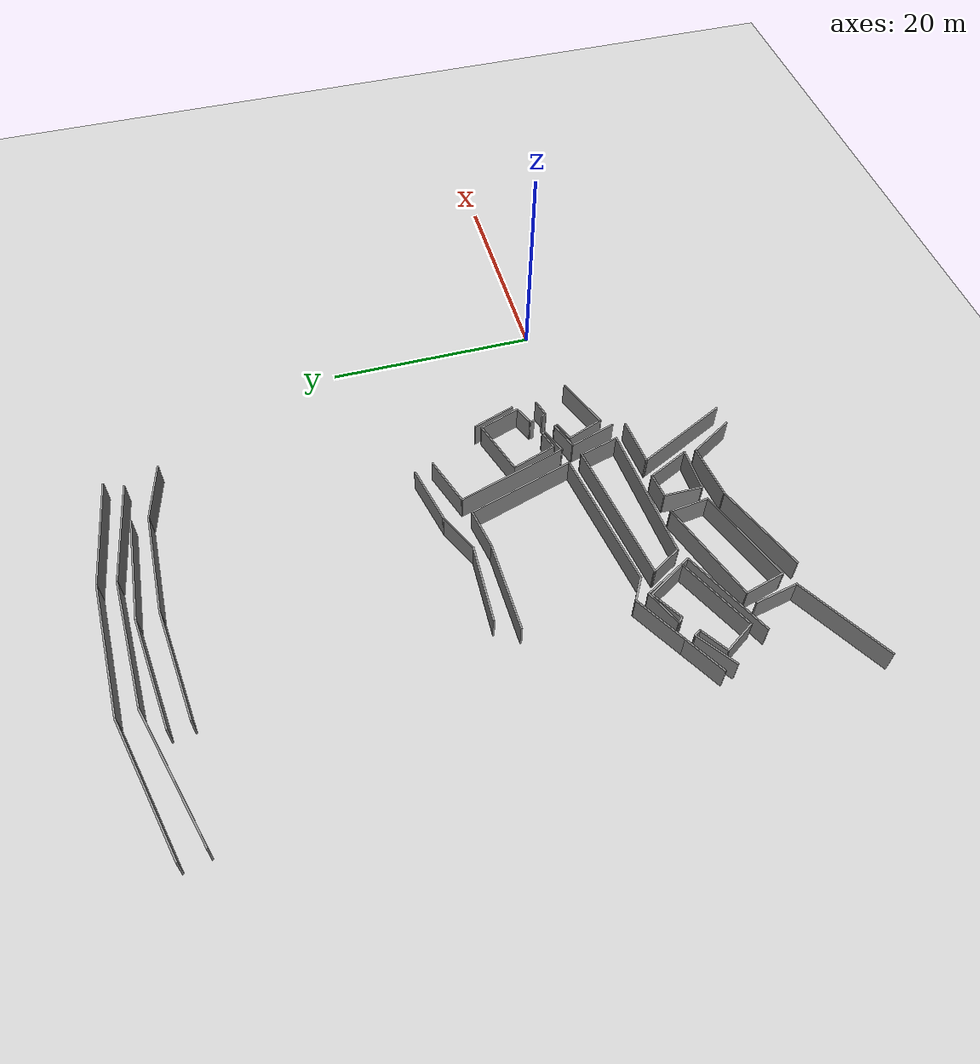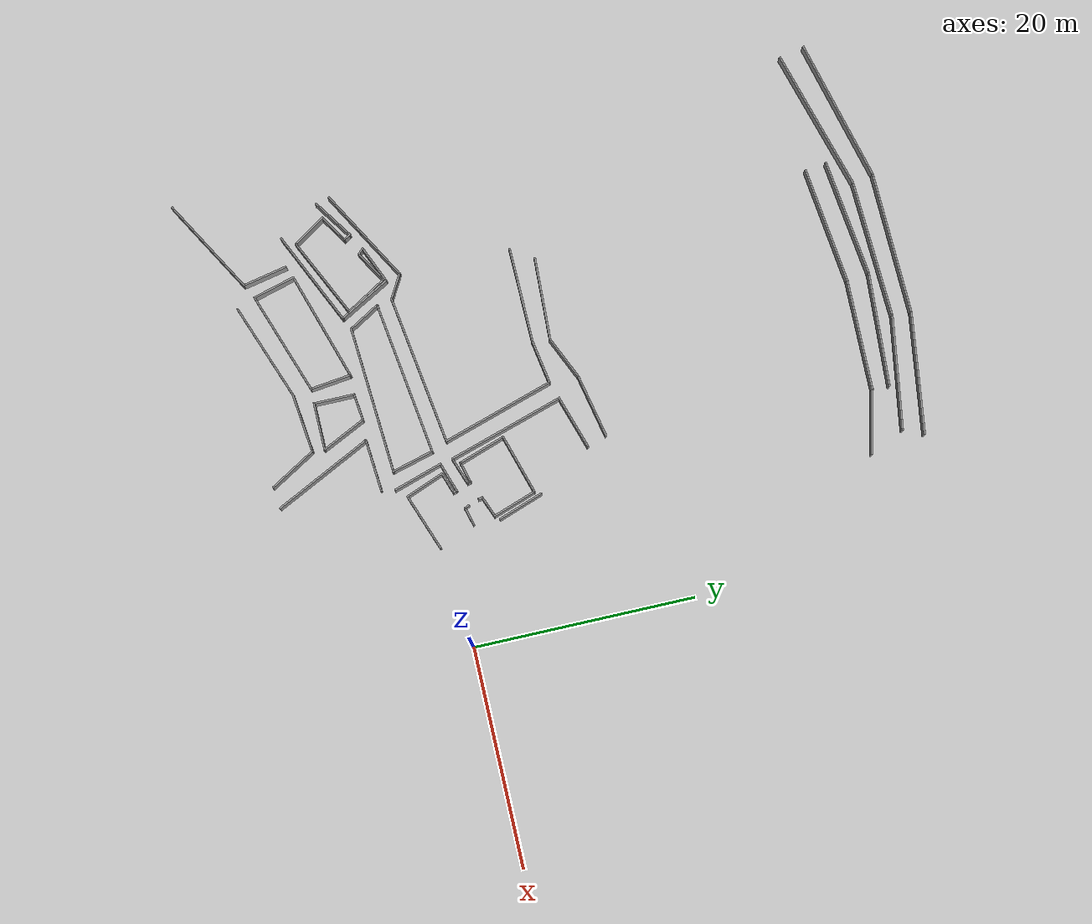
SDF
<sdf version="1.7">
 <world name="default">
  <model name="ground_plane">
   <static>1</static>
   <link name="link">
    <collision name="collision">
     <geometry><plane><normal>0 0 1</normal><size>100 100</size></plane></geometry>
     <surface><friction><ode><mu>100</mu><mu2>50</mu2></ode></friction></surface>
    </collision>
    <visual name="visual">
     <cast_shadows>0</cast_shadows>
     <geometry><plane><normal>0 0 1</normal><size>100 100</size></plane></geometry>
     <material>
      <script><uri>file://media/materials/scripts/gazebo.material</uri><name>Gazebo/Grey</name></script>
     </material>
    </visual>
   </link>
  </model>
  <model name="final_max_v1">
   <pose>-2.52311 0.689104 0 0 -0 0</pose>
   <link name="Wall_105">
    <collision name="Wall_105_Collision">
     <geometry><box><size>12.9786 0.15 2.5</size></box></geometry>
     <pose>0 0 1.25 0 -0 0</pose>
    </collision>
    <visual name="Wall_105_Visual">
     <pose>0 0 1.25 0 -0 0</pose>
     <geometry><box><size>12.9786 0.15 2.5</size></box></geometry>
     <material>
      <script><uri>file://media/materials/scripts/gazebo.material</uri><name>Gazebo/Grey</name></script>
      <ambient>1 1 1 1</ambient>
     </material>
     <meta><layer>0</layer></meta>
    </visual>
    <pose>-36.4883 41.0795 0 0 -0 0.269405</pose>
   </link>
   <link name="Wall_106">
    <collision name="Wall_106_Collision">
     <geometry><box><size>12.8269 0.15 2.5</size></box></geometry>
     <pose>0 0 1.25 0 -0 0</pose>
    </collision>
    <visual name="Wall_106_Visual">
     <pose>0 0 1.25 0 -0 0</pose>
     <geometry><box><size>12.8269 0.15 2.5</size></box></geometry>
     <material>
      <script><uri>file://media/materials/scripts/gazebo.material</uri><name>Gazebo/Grey</name></script>
      <ambient>1 1 1 1</ambient>
     </material>
     <meta><layer>0</layer></meta>
    </visual>
    <pose>-23.9732 43.0681 0 0 -0 0.044415</pose>
   </link>
   <link name="Wall_107">
    <collision name="Wall_107_Collision">
     <geometry><box><size>10.9191 0.15 2.5</size></box></geometry>
     <pose>0 0 1.25 0 -0 0</pose>
    </collision>
    <visual name="Wall_107_Visual">
     <pose>0 0 1.25 0 -0 0</pose>
     <geometry><box><size>10.9191 0.15 2.5</size></box></geometry>
     <material>
      <script><uri>file://media/materials/scripts/gazebo.material</uri><name>Gazebo/Grey</name></script>
      <ambient>1 1 1 1</ambient>
     </material>
     <meta><layer>0</layer></meta>
    </visual>
    <pose>-12.2939 42.7164 0 0 -0 -0.117872</pose>
   </link>
   <link name="Wall_153">
    <collision name="Wall_153_Collision">
     <geometry><box><size>12.9542 0.15 2.5</size></box></geometry>
     <pose>0 0 1.25 0 -0 0</pose>
    </collision>
    <visual name="Wall_153_Visual">
     <pose>0 0 1.25 0 -0 0</pose>
     <geometry><box><size>12.9542 0.15 2.5</size></box></geometry>
     <material>
      <script><uri>file://media/materials/scripts/gazebo.material</uri><name>Gazebo/Grey</name></script>
      <ambient>1 1 1 1</ambient>
     </material>
     <meta><layer>0</layer></meta>
    </visual>
    <pose>-36.0882 39.033 0 0 -0 0.299027</pose>
   </link>
   <link name="Wall_155">
    <collision name="Wall_155_Collision">
     <geometry><box><size>12.4081 0.15 2.5</size></box></geometry>
     <pose>0 0 1.25 0 -0 0</pose>
    </collision>
    <visual name="Wall_155_Visual">
     <pose>0 0 1.25 0 -0 0</pose>
     <geometry><box><size>12.4081 0.15 2.5</size></box></geometry>
     <material>
      <script><uri>file://media/materials/scripts/gazebo.material</uri><name>Gazebo/Grey</name></script>
      <ambient>1 1 1 1</ambient>
     </material>
     <meta><layer>0</layer></meta>
    </visual>
    <pose>-23.8522 41.287 0 0 -0 0.060078</pose>
   </link>
   <link name="Wall_157">
    <collision name="Wall_157_Collision">
     <geometry><box><size>10.2725 0.15 2.5</size></box></geometry>
     <pose>0 0 1.25 0 -0 0</pose>
    </collision>
    <visual name="Wall_157_Visual">
     <pose>0 0 1.25 0 -0 0</pose>
     <geometry><box><size>10.2725 0.15 2.5</size></box></geometry>
     <material>
      <script><uri>file://media/materials/scripts/gazebo.material</uri><name>Gazebo/Grey</name></script>
      <ambient>1 1 1 1</ambient>
     </material>
     <meta><layer>0</layer></meta>
    </visual>
    <pose>-12.7202 40.965 0 0 -0 -0.136756</pose>
   </link>
   <link name="Wall_187">
    <collision name="Wall_187_Collision">
     <geometry><box><size>10.5586 0.15 2.5</size></box></geometry>
     <pose>0 0 1.25 0 -0 0</pose>
    </collision>
    <visual name="Wall_187_Visual">
     <pose>0 0 1.25 0 -0 0</pose>
     <geometry><box><size>10.5586 0.15 2.5</size></box></geometry>
     <material>
      <script><uri>file://media/materials/scripts/gazebo.material</uri><name>Gazebo/Grey</name></script>
      <ambient>1 1 1 1</ambient>
     </material>
     <meta><layer>0</layer></meta>
    </visual>
    <pose>-27.0306 39.7397 0 0 -0 0.141897</pose>
   </link>
   <link name="Wall_189">
    <collision name="Wall_189_Collision">
     <geometry><box><size>10.2804 0.15 2.5</size></box></geometry>
     <pose>0 0 1.25 0 -0 0</pose>
    </collision>
    <visual name="Wall_189_Visual">
     <pose>0 0 1.25 0 -0 0</pose>
     <geometry><box><size>10.2804 0.15 2.5</size></box></geometry>
     <material>
      <script><uri>file://media/materials/scripts/gazebo.material</uri><name>Gazebo/Grey</name></script>
      <ambient>1 1 1 1</ambient>
     </material>
     <meta><layer>0</layer></meta>
    </visual>
    <pose>-16.8186 40.2457 0 0 -0 -0.045423</pose>
   </link>
   <link name="Wall_207">
    <collision name="Wall_207_Collision">
     <geometry><box><size>10.546 0.15 2.5</size></box></geometry>
     <pose>0 0 1.25 0 -0 0</pose>
    </collision>
    <visual name="Wall_207_Visual">
     <pose>0 0 1.25 0 -0 0</pose>
     <geometry><box><size>10.546 0.15 2.5</size></box></geometry>
     <material>
      <script><uri>file://media/materials/scripts/gazebo.material</uri><name>Gazebo/Grey</name></script>
      <ambient>1 1 1 1</ambient>
     </material>
     <meta><layer>0</layer></meta>
    </visual>
    <pose>-26.7651 37.7958 0 0 -0 0.133136</pose>
   </link>
   <link name="Wall_208">
    <collision name="Wall_208_Collision">
     <geometry><box><size>10 0.15 2.5</size></box></geometry>
     <pose>0 0 1.25 0 -0 0</pose>
    </collision>
    <visual name="Wall_208_Visual">
     <pose>0 0 1.25 0 -0 0</pose>
     <geometry><box><size>10 0.15 2.5</size></box></geometry>
     <material>
      <script><uri>file://media/materials/scripts/gazebo.material</uri><name>Gazebo/Grey</name></script>
      <ambient>1 1 1 1</ambient>
     </material>
     <meta><layer>0</layer></meta>
    </visual>
    <pose>-16.6881 38.4858 0 0 -0 0</pose>
   </link>
   <link name="Wall_326">
    <collision name="Wall_326_Collision">
     <geometry><box><size>2 0.15 2.5</size></box></geometry>
     <pose>0 0 1.25 0 -0 0</pose>
    </collision>
    <visual name="Wall_326_Visual">
     <pose>0 0 1.25 0 -0 0</pose>
     <geometry><box><size>2 0.15 2.5</size></box></geometry>
     <material>
      <script><uri>file://media/materials/scripts/gazebo.material</uri><name>Gazebo/Grey</name></script>
      <ambient>1 1 1 1</ambient>
     </material>
     <meta><layer>0</layer></meta>
    </visual>
    <pose>-12.5221 1.99009 0 0 -0 -2.87979</pose>
   </link>
   <link name="Wall_327">
    <collision name="Wall_327_Collision">
     <geometry><box><size>4.52817 0.15 2.5</size></box></geometry>
     <pose>0 0 1.25 0 -0 0</pose>
    </collision>
    <visual name="Wall_327_Visual">
     <pose>0 0 1.25 0 -0 0</pose>
     <geometry><box><size>4.52817 0.15 2.5</size></box></geometry>
     <material>
      <script><uri>file://media/materials/scripts/gazebo.material</uri><name>Gazebo/Grey</name></script>
      <ambient>1 1 1 1</ambient>
     </material>
     <meta><layer>0</layer></meta>
    </visual>
    <pose>-14.1161 3.82466 0 0 -0 1.89652</pose>
   </link>
   <link name="Wall_328">
    <collision name="Wall_328_Collision">
     <geometry><box><size>5.68673 0.15 2.5</size></box></geometry>
     <pose>0 0 1.25 0 -0 0</pose>
    </collision>
    <visual name="Wall_328_Visual">
     <pose>0 0 1.25 0 -0 0</pose>
     <geometry><box><size>5.68673 0.15 2.5</size></box></geometry>
     <material>
      <script><uri>file://media/materials/scripts/gazebo.material</uri><name>Gazebo/Grey</name></script>
      <ambient>1 1 1 1</ambient>
     </material>
     <meta><layer>0</layer></meta>
    </visual>
    <pose>-12.1699 6.71066 0 0 -0 0.2977</pose>
   </link>
   <link name="Wall_329">
    <collision name="Wall_329_Collision">
     <geometry><box><size>4.22069 0.15 2.5</size></box></geometry>
     <pose>0 0 1.25 0 -0 0</pose>
    </collision>
    <visual name="Wall_329_Visual">
     <pose>0 0 1.25 0 -0 0</pose>
     <geometry><box><size>4.22069 0.15 2.5</size></box></geometry>
     <material>
      <script><uri>file://media/materials/scripts/gazebo.material</uri><name>Gazebo/Grey</name></script>
      <ambient>1 1 1 1</ambient>
     </material>
     <meta><layer>0</layer></meta>
    </visual>
    <pose>-8.8617 5.59789 0 0 -0 -1.2397</pose>
   </link>
   <link name="Wall_330">
    <collision name="Wall_330_Collision">
     <geometry><box><size>2.0935 0.15 2.5</size></box></geometry>
     <pose>0 0 1.25 0 -0 0</pose>
    </collision>
    <visual name="Wall_330_Visual">
     <pose>0 0 1.25 0 -0 0</pose>
     <geometry><box><size>2.0935 0.15 2.5</size></box></geometry>
     <material>
      <script><uri>file://media/materials/scripts/gazebo.material</uri><name>Gazebo/Grey</name></script>
      <ambient>1 1 1 1</ambient>
     </material>
     <meta><layer>0</layer></meta>
    </visual>
    <pose>-9.1023 3.3122 0 0 -0 -2.76109</pose>
   </link>
   <link name="Wall_333">
    <collision name="Wall_333_Collision">
     <geometry><box><size>4.35405 0.15 2.5</size></box></geometry>
     <pose>0 0 1.25 0 -0 0</pose>
    </collision>
    <visual name="Wall_333_Visual">
     <pose>0 0 1.25 0 -0 0</pose>
     <geometry><box><size>4.35405 0.15 2.5</size></box></geometry>
     <material>
      <script><uri>file://media/materials/scripts/gazebo.material</uri><name>Gazebo/Grey</name></script>
      <ambient>1 1 1 1</ambient>
     </material>
     <meta><layer>0</layer></meta>
    </visual>
    <pose>-8.53088 6.07909 0 0 -0 1.90612</pose>
   </link>
   <link name="Wall_338">
    <collision name="Wall_338_Collision">
     <geometry><box><size>3.79257 0.15 2.5</size></box></geometry>
     <pose>0 0 1.25 0 -0 0</pose>
    </collision>
    <visual name="Wall_338_Visual">
     <pose>0 0 1.25 0 -0 0</pose>
     <geometry><box><size>3.79257 0.15 2.5</size></box></geometry>
     <material>
      <script><uri>file://media/materials/scripts/gazebo.material</uri><name>Gazebo/Grey</name></script>
      <ambient>1 1 1 1</ambient>
     </material>
     <meta><layer>0</layer></meta>
    </visual>
    <pose>-12.1998 -1.73062 0 0 -0 -1.20362</pose>
   </link>
   <link name="Wall_339">
    <collision name="Wall_339_Collision">
     <geometry><box><size>5.49451 0.15 2.5</size></box></geometry>
     <pose>0 0 1.25 0 -0 0</pose>
    </collision>
    <visual name="Wall_339_Visual">
     <pose>0 0 1.25 0 -0 0</pose>
     <geometry><box><size>5.49451 0.15 2.5</size></box></geometry>
     <material>
      <script><uri>file://media/materials/scripts/gazebo.material</uri><name>Gazebo/Grey</name></script>
      <ambient>1 1 1 1</ambient>
     </material>
     <meta><layer>0</layer></meta>
    </visual>
    <pose>-9.03535 -2.51518 0 0 -0 0.349607</pose>
   </link>
   <link name="Wall_348">
    <collision name="Wall_348_Collision">
     <geometry><box><size>2.08526 0.15 2.5</size></box></geometry>
     <pose>0 0 1.25 0 -0 0</pose>
    </collision>
    <visual name="Wall_348_Visual">
     <pose>0 0 1.25 0 -0 0</pose>
     <geometry><box><size>2.08526 0.15 2.5</size></box></geometry>
     <material>
      <script><uri>file://media/materials/scripts/gazebo.material</uri><name>Gazebo/Grey</name></script>
      <ambient>1 1 1 1</ambient>
     </material>
     <meta><layer>0</layer></meta>
    </visual>
    <pose>-11.9382 0.283094 0 0 -0 0.330297</pose>
   </link>
   <link name="Wall_350">
    <collision name="Wall_350_Collision">
     <geometry><box><size>1.75 0.15 2.5</size></box></geometry>
     <pose>0 0 1.25 0 -0 0</pose>
    </collision>
    <visual name="Wall_350_Visual">
     <pose>0 0 1.25 0 -0 0</pose>
     <geometry><box><size>1.75 0.15 2.5</size></box></geometry>
     <material>
      <script><uri>file://media/materials/scripts/gazebo.material</uri><name>Gazebo/Grey</name></script>
      <ambient>1 1 1 1</ambient>
     </material>
     <meta><layer>0</layer></meta>
    </visual>
    <pose>-8.6574 1.48825 0 0 -0 -2.87979</pose>
   </link>
   <link name="Wall_356">
    <collision name="Wall_356_Collision">
     <geometry><box><size>0.444601 0.15 2.5</size></box></geometry>
     <pose>0 0 1.25 0 -0 0</pose>
    </collision>
    <visual name="Wall_356_Visual">
     <pose>0 0 1.25 0 -0 0</pose>
     <geometry><box><size>0.444601 0.15 2.5</size></box></geometry>
     <material>
      <script><uri>file://media/materials/scripts/gazebo.material</uri><name>Gazebo/Grey</name></script>
      <ambient>1 1 1 1</ambient>
     </material>
     <meta><layer>0</layer></meta>
    </visual>
    <pose>-11.0589 0.739759 0 0 -0 -1.32406</pose>
   </link>
   <link name="Wall_358">
    <collision name="Wall_358_Collision">
     <geometry><box><size>0.523214 0.15 2.5</size></box></geometry>
     <pose>0 0 1.25 0 -0 0</pose>
    </collision>
    <visual name="Wall_358_Visual">
     <pose>0 0 1.25 0 -0 0</pose>
     <geometry><box><size>0.523214 0.15 2.5</size></box></geometry>
     <material>
      <script><uri>file://media/materials/scripts/gazebo.material</uri><name>Gazebo/Grey</name></script>
      <ambient>1 1 1 1</ambient>
     </material>
     <meta><layer>0</layer></meta>
    </visual>
    <pose>-9.5231 1.443 0 0 -0 -1.04932</pose>
   </link>
   <link name="Wall_360">
    <collision name="Wall_360_Collision">
     <geometry><box><size>0.411181 0.15 2.5</size></box></geometry>
     <pose>0 0 1.25 0 -0 0</pose>
    </collision>
    <visual name="Wall_360_Visual">
     <pose>0 0 1.25 0 -0 0</pose>
     <geometry><box><size>0.411181 0.15 2.5</size></box></geometry>
     <material>
      <script><uri>file://media/materials/scripts/gazebo.material</uri><name>Gazebo/Grey</name></script>
      <ambient>1 1 1 1</ambient>
     </material>
     <meta><layer>0</layer></meta>
    </visual>
    <pose>-11.5853 2.1063 0 0 -0 1.90897</pose>
   </link>
   <link name="Wall_362">
    <collision name="Wall_362_Collision">
     <geometry><box><size>0.467902 0.15 2.5</size></box></geometry>
     <pose>0 0 1.25 0 -0 0</pose>
    </collision>
    <visual name="Wall_362_Visual">
     <pose>0 0 1.25 0 -0 0</pose>
     <geometry><box><size>0.467902 0.15 2.5</size></box></geometry>
     <material>
      <script><uri>file://media/materials/scripts/gazebo.material</uri><name>Gazebo/Grey</name></script>
      <ambient>1 1 1 1</ambient>
     </material>
     <meta><layer>0</layer></meta>
    </visual>
    <pose>-9.98226 2.79392 0 0 -0 1.71151</pose>
   </link>
   <link name="Wall_385">
    <collision name="Wall_385_Collision">
     <geometry><box><size>5.83984 0.15 2.5</size></box></geometry>
     <pose>0 0 1.25 0 -0 0</pose>
    </collision>
    <visual name="Wall_385_Visual">
     <pose>0 0 1.25 0 -0 0</pose>
     <geometry><box><size>5.83984 0.15 2.5</size></box></geometry>
     <material>
      <script><uri>file://media/materials/scripts/gazebo.material</uri><name>Gazebo/Grey</name></script>
      <ambient>1 1 1 1</ambient>
     </material>
     <meta><layer>0</layer></meta>
    </visual>
    <pose>-8.99774 37.818 0 0 -0 -0.236973</pose>
   </link>
   <link name="Wall_394">
    <collision name="Wall_394_Collision">
     <geometry><box><size>7.47359 0.15 2.5</size></box></geometry>
     <pose>0 0 1.25 0 -0 0</pose>
    </collision>
    <visual name="Wall_394_Visual">
     <pose>0 0 1.25 0 -0 0</pose>
     <geometry><box><size>7.47359 0.15 2.5</size></box></geometry>
     <material>
      <script><uri>file://media/materials/scripts/gazebo.material</uri><name>Gazebo/Grey</name></script>
      <ambient>1 1 1 1</ambient>
     </material>
     <meta><layer>0</layer></meta>
    </visual>
    <pose>-25.9366 11.9607 0 0 -0 -0.037482</pose>
   </link>
   <link name="Wall_398">
    <collision name="Wall_398_Collision">
     <geometry><box><size>8.58721 0.15 2.5</size></box></geometry>
     <pose>0 0 1.25 0 -0 0</pose>
    </collision>
    <visual name="Wall_398_Visual">
     <pose>0 0 1.25 0 -0 0</pose>
     <geometry><box><size>8.58721 0.15 2.5</size></box></geometry>
     <material>
      <script><uri>file://media/materials/scripts/gazebo.material</uri><name>Gazebo/Grey</name></script>
      <ambient>1 1 1 1</ambient>
     </material>
     <meta><layer>0</layer></meta>
    </visual>
    <pose>-26.6782 10.1895 0 0 -0 0.01868</pose>
   </link>
   <link name="Wall_400">
    <collision name="Wall_400_Collision">
     <geometry><box><size>4.23042 0.15 2.5</size></box></geometry>
     <pose>0 0 1.25 0 -0 0</pose>
    </collision>
    <visual name="Wall_400_Visual">
     <pose>0 0 1.25 0 -0 0</pose>
     <geometry><box><size>4.23042 0.15 2.5</size></box></geometry>
     <material>
      <script><uri>file://media/materials/scripts/gazebo.material</uri><name>Gazebo/Grey</name></script>
      <ambient>1 1 1 1</ambient>
     </material>
     <meta><layer>0</layer></meta>
    </visual>
    <pose>-20.4212 12.6703 0 0 -0 0.428018</pose>
   </link>
   <link name="Wall_401">
    <collision name="Wall_401_Collision">
     <geometry><box><size>5.84537 0.15 2.5</size></box></geometry>
     <pose>0 0 1.25 0 -0 0</pose>
    </collision>
    <visual name="Wall_401_Visual">
     <pose>0 0 1.25 0 -0 0</pose>
     <geometry><box><size>5.84537 0.15 2.5</size></box></geometry>
     <material>
      <script><uri>file://media/materials/scripts/gazebo.material</uri><name>Gazebo/Grey</name></script>
      <ambient>1 1 1 1</ambient>
     </material>
     <meta><layer>0</layer></meta>
    </visual>
    <pose>-15.7834 14.1273 0 0 -0 0.215921</pose>
   </link>
   <link name="Wall_404">
    <collision name="Wall_404_Collision">
     <geometry><box><size>4 0.15 2.5</size></box></geometry>
     <pose>0 0 1.25 0 -0 0</pose>
    </collision>
    <visual name="Wall_404_Visual">
     <pose>0 0 1.25 0 -0 0</pose>
     <geometry><box><size>4 0.15 2.5</size></box></geometry>
     <material>
      <script><uri>file://media/materials/scripts/gazebo.material</uri><name>Gazebo/Grey</name></script>
      <ambient>1 1 1 1</ambient>
     </material>
     <meta><layer>0</layer></meta>
    </visual>
    <pose>-14.4631 -2.31451 0 0 -0 1.8326</pose>
   </link>
   <link name="Wall_406">
    <collision name="Wall_406_Collision">
     <geometry><box><size>3.25 0.15 2.5</size></box></geometry>
     <pose>0 0 1.25 0 -0 0</pose>
    </collision>
    <visual name="Wall_406_Visual">
     <pose>0 0 1.25 0 -0 0</pose>
     <geometry><box><size>3.25 0.15 2.5</size></box></geometry>
     <material>
      <script><uri>file://media/materials/scripts/gazebo.material</uri><name>Gazebo/Grey</name></script>
      <ambient>1 1 1 1</ambient>
     </material>
     <meta><layer>0</layer></meta>
    </visual>
    <pose>-27.828 -3.70736 0 0 -0 -1.0472</pose>
   </link>
   <link name="Wall_407">
    <collision name="Wall_407_Collision">
     <geometry><box><size>13.2674 0.15 2.5</size></box></geometry>
     <pose>0 0 1.25 0 -0 0</pose>
    </collision>
    <visual name="Wall_407_Visual">
     <pose>0 0 1.25 0 -0 0</pose>
     <geometry><box><size>13.2674 0.15 2.5</size></box></geometry>
     <material>
      <script><uri>file://media/materials/scripts/gazebo.material</uri><name>Gazebo/Grey</name></script>
      <ambient>1 1 1 1</ambient>
     </material>
     <meta><layer>0</layer></meta>
    </visual>
    <pose>-20.5089 -4.61181 0 0 -0 0.066815</pose>
   </link>
   <link name="Wall_409">
    <collision name="Wall_409_Collision">
     <geometry><box><size>13.9247 0.15 2.5</size></box></geometry>
     <pose>0 0 1.25 0 -0 0</pose>
    </collision>
    <visual name="Wall_409_Visual">
     <pose>0 0 1.25 0 -0 0</pose>
     <geometry><box><size>13.9247 0.15 2.5</size></box></geometry>
     <material>
      <script><uri>file://media/materials/scripts/gazebo.material</uri><name>Gazebo/Grey</name></script>
      <ambient>1 1 1 1</ambient>
     </material>
     <meta><layer>0</layer></meta>
    </visual>
    <pose>-21.7821 -1.41006 0 0 -0 0.139103</pose>
   </link>
   <link name="Wall_411">
    <collision name="Wall_411_Collision">
     <geometry><box><size>3.44351 0.15 2.5</size></box></geometry>
     <pose>0 0 1.25 0 -0 0</pose>
    </collision>
    <visual name="Wall_411_Visual">
     <pose>0 0 1.25 0 -0 0</pose>
     <geometry><box><size>3.44351 0.15 2.5</size></box></geometry>
     <material>
      <script><uri>file://media/materials/scripts/gazebo.material</uri><name>Gazebo/Grey</name></script>
      <ambient>1 1 1 1</ambient>
     </material>
     <meta><layer>0</layer></meta>
    </visual>
    <pose>-36.3458 -6.77948 0 0 -0 -1.00041</pose>
   </link>
   <link name="Wall_412">
    <collision name="Wall_412_Collision">
     <geometry><box><size>7.75303 0.15 2.5</size></box></geometry>
     <pose>0 0 1.25 0 -0 0</pose>
    </collision>
    <visual name="Wall_412_Visual">
     <pose>0 0 1.25 0 -0 0</pose>
     <geometry><box><size>7.75303 0.15 2.5</size></box></geometry>
     <material>
      <script><uri>file://media/materials/scripts/gazebo.material</uri><name>Gazebo/Grey</name></script>
      <ambient>1 1 1 1</ambient>
     </material>
     <meta><layer>0</layer></meta>
    </visual>
    <pose>-32.0307 -6.51795 0 0 -0 0.448264</pose>
   </link>
   <link name="Wall_413">
    <collision name="Wall_413_Collision">
     <geometry><box><size>4.27641 0.15 2.5</size></box></geometry>
     <pose>0 0 1.25 0 -0 0</pose>
    </collision>
    <visual name="Wall_413_Visual">
     <pose>0 0 1.25 0 -0 0</pose>
     <geometry><box><size>4.27641 0.15 2.5</size></box></geometry>
     <material>
      <script><uri>file://media/materials/scripts/gazebo.material</uri><name>Gazebo/Grey</name></script>
      <ambient>1 1 1 1</ambient>
     </material>
     <meta><layer>0</layer></meta>
    </visual>
    <pose>-29.6509 -3.09202 0 0 -0 2.10252</pose>
   </link>
   <link name="Wall_414">
    <collision name="Wall_414_Collision">
     <geometry><box><size>3.27165 0.15 2.5</size></box></geometry>
     <pose>0 0 1.25 0 -0 0</pose>
    </collision>
    <visual name="Wall_414_Visual">
     <pose>0 0 1.25 0 -0 0</pose>
     <geometry><box><size>3.27165 0.15 2.5</size></box></geometry>
     <material>
      <script><uri>file://media/materials/scripts/gazebo.material</uri><name>Gazebo/Grey</name></script>
      <ambient>1 1 1 1</ambient>
     </material>
     <meta><layer>0</layer></meta>
    </visual>
    <pose>-32.0307 -2.12439 0 0 -0 -2.59543</pose>
   </link>
   <link name="Wall_417">
    <collision name="Wall_417_Collision">
     <geometry><box><size>2.91163 0.15 2.5</size></box></geometry>
     <pose>0 0 1.25 0 -0 0</pose>
    </collision>
    <visual name="Wall_417_Visual">
     <pose>0 0 1.25 0 -0 0</pose>
     <geometry><box><size>2.91163 0.15 2.5</size></box></geometry>
     <material>
      <script><uri>file://media/materials/scripts/gazebo.material</uri><name>Gazebo/Grey</name></script>
      <ambient>1 1 1 1</ambient>
     </material>
     <meta><layer>0</layer></meta>
    </visual>
    <pose>-36.0749 -4.64456 0 0 -0 -2.56839</pose>
   </link>
   <link name="Wall_422">
    <collision name="Wall_422_Collision">
     <geometry><box><size>0.785118 0.15 2.5</size></box></geometry>
     <pose>0 0 1.25 0 -0 0</pose>
    </collision>
    <visual name="Wall_422_Visual">
     <pose>0 0 1.25 0 -0 0</pose>
     <geometry><box><size>0.785118 0.15 2.5</size></box></geometry>
     <material>
      <script><uri>file://media/materials/scripts/gazebo.material</uri><name>Gazebo/Grey</name></script>
      <ambient>1 1 1 1</ambient>
     </material>
     <meta><layer>0</layer></meta>
    </visual>
    <pose>-35.0775 -3.62304 0 0 -0 -1.03267</pose>
   </link>
   <link name="Wall_424">
    <collision name="Wall_424_Collision">
     <geometry><box><size>0.742584 0.15 2.5</size></box></geometry>
     <pose>0 0 1.25 0 -0 0</pose>
    </collision>
    <visual name="Wall_424_Visual">
     <pose>0 0 1.25 0 -0 0</pose>
     <geometry><box><size>0.742584 0.15 2.5</size></box></geometry>
     <material>
      <script><uri>file://media/materials/scripts/gazebo.material</uri><name>Gazebo/Grey</name></script>
      <ambient>1 1 1 1</ambient>
     </material>
     <meta><layer>0</layer></meta>
    </visual>
    <pose>-33.5761 -2.7277 0 0 -0 -0.775427</pose>
   </link>
   <link name="Wall_426">
    <collision name="Wall_426_Collision">
     <geometry><box><size>4.25 0.15 2.5</size></box></geometry>
     <pose>0 0 1.25 0 -0 0</pose>
    </collision>
    <visual name="Wall_426_Visual">
     <pose>0 0 1.25 0 -0 0</pose>
     <geometry><box><size>4.25 0.15 2.5</size></box></geometry>
     <material>
      <script><uri>file://media/materials/scripts/gazebo.material</uri><name>Gazebo/Grey</name></script>
      <ambient>1 1 1 1</ambient>
     </material>
     <meta><layer>0</layer></meta>
    </visual>
    <pose>-37.0776 -3.40328 0 0 -0 -2.61799</pose>
   </link>
   <link name="Wall_431">
    <collision name="Wall_431_Collision">
     <geometry><box><size>5.25 0.15 2.5</size></box></geometry>
     <pose>0 0 1.25 0 -0 0</pose>
    </collision>
    <visual name="Wall_431_Visual">
     <pose>0 0 1.25 0 -0 0</pose>
     <geometry><box><size>5.25 0.15 2.5</size></box></geometry>
     <material>
      <script><uri>file://media/materials/scripts/gazebo.material</uri><name>Gazebo/Grey</name></script>
      <ambient>1 1 1 1</ambient>
     </material>
     <meta><layer>0</layer></meta>
    </visual>
    <pose>-33.0939 -1.10328 0 0 -0 0.523599</pose>
   </link>
   <link name="Wall_432">
    <collision name="Wall_432_Collision">
     <geometry><box><size>2.5 0.15 2.5</size></box></geometry>
     <pose>0 0 1.25 0 -0 0</pose>
    </collision>
    <visual name="Wall_432_Visual">
     <pose>0 0 1.25 0 -0 0</pose>
     <geometry><box><size>2.5 0.15 2.5</size></box></geometry>
     <material>
      <script><uri>file://media/materials/scripts/gazebo.material</uri><name>Gazebo/Grey</name></script>
      <ambient>1 1 1 1</ambient>
     </material>
     <meta><layer>0</layer></meta>
    </visual>
    <pose>-29.8679 -0.415777 0 0 -0 -0.523599</pose>
   </link>
   <link name="Wall_433">
    <collision name="Wall_433_Collision">
     <geometry><box><size>13.5881 0.15 2.5</size></box></geometry>
     <pose>0 0 1.25 0 -0 0</pose>
    </collision>
    <visual name="Wall_433_Visual">
     <pose>0 0 1.25 0 -0 0</pose>
     <geometry><box><size>13.5881 0.15 2.5</size></box></geometry>
     <material>
      <script><uri>file://media/materials/scripts/gazebo.material</uri><name>Gazebo/Grey</name></script>
      <ambient>1 1 1 1</ambient>
     </material>
     <meta><layer>0</layer></meta>
    </visual>
    <pose>-22.2034 -0.021479 0 0 -0 0.146646</pose>
   </link>
   <link name="Wall_435">
    <collision name="Wall_435_Collision">
     <geometry><box><size>10.5808 0.15 2.5</size></box></geometry>
     <pose>0 0 1.25 0 -0 0</pose>
    </collision>
    <visual name="Wall_435_Visual">
     <pose>0 0 1.25 0 -0 0</pose>
     <geometry><box><size>10.5808 0.15 2.5</size></box></geometry>
     <material>
      <script><uri>file://media/materials/scripts/gazebo.material</uri><name>Gazebo/Grey</name></script>
      <ambient>1 1 1 1</ambient>
     </material>
     <meta><layer>0</layer></meta>
    </visual>
    <pose>-17.088 5.94576 0 0 -0 -1.27273</pose>
   </link>
   <link name="Wall_437">
    <collision name="Wall_437_Collision">
     <geometry><box><size>4.04743 0.15 2.5</size></box></geometry>
     <pose>0 0 1.25 0 -0 0</pose>
    </collision>
    <visual name="Wall_437_Visual">
     <pose>0 0 1.25 0 -0 0</pose>
     <geometry><box><size>4.04743 0.15 2.5</size></box></geometry>
     <material>
      <script><uri>file://media/materials/scripts/gazebo.material</uri><name>Gazebo/Grey</name></script>
      <ambient>1 1 1 1</ambient>
     </material>
     <meta><layer>0</layer></meta>
    </visual>
    <pose>-20.54 10.5998 0 0 -0 0.170915</pose>
   </link>
   <link name="Wall_439">
    <collision name="Wall_439_Collision">
     <geometry><box><size>10.9365 0.15 2.5</size></box></geometry>
     <pose>0 0 1.25 0 -0 0</pose>
    </collision>
    <visual name="Wall_439_Visual">
     <pose>0 0 1.25 0 -0 0</pose>
     <geometry><box><size>10.9365 0.15 2.5</size></box></geometry>
     <material>
      <script><uri>file://media/materials/scripts/gazebo.material</uri><name>Gazebo/Grey</name></script>
      <ambient>1 1 1 1</ambient>
     </material>
     <meta><layer>0</layer></meta>
    </visual>
    <pose>-15.4987 6.28843 0 0 -0 1.86683</pose>
   </link>
   <link name="Wall_440">
    <collision name="Wall_440_Collision">
     <geometry><box><size>5.05496 0.15 2.5</size></box></geometry>
     <pose>0 0 1.25 0 -0 0</pose>
    </collision>
    <visual name="Wall_440_Visual">
     <pose>0 0 1.25 0 -0 0</pose>
     <geometry><box><size>5.05496 0.15 2.5</size></box></geometry>
     <material>
      <script><uri>file://media/materials/scripts/gazebo.material</uri><name>Gazebo/Grey</name></script>
      <ambient>1 1 1 1</ambient>
     </material>
     <meta><layer>0</layer></meta>
    </visual>
    <pose>-14.7399 12.2058 0 0 -0 0.314541</pose>
   </link>
   <link name="Wall_442">
    <collision name="Wall_442_Collision">
     <geometry><box><size>2.6815 0.15 2.5</size></box></geometry>
     <pose>0 0 1.25 0 -0 0</pose>
    </collision>
    <visual name="Wall_442_Visual">
     <pose>0 0 1.25 0 -0 0</pose>
     <geometry><box><size>2.6815 0.15 2.5</size></box></geometry>
     <material>
      <script><uri>file://media/materials/scripts/gazebo.material</uri><name>Gazebo/Grey</name></script>
      <ambient>1 1 1 1</ambient>
     </material>
     <meta><layer>0</layer></meta>
    </visual>
    <pose>-12.7336 1.55645 0 0 -0 0.34381</pose>
   </link>
   <link name="Wall_444">
    <collision name="Wall_444_Collision">
     <geometry><box><size>4.68733 0.15 2.5</size></box></geometry>
     <pose>0 0 1.25 0 -0 0</pose>
    </collision>
    <visual name="Wall_444_Visual">
     <pose>0 0 1.25 0 -0 0</pose>
     <geometry><box><size>4.68733 0.15 2.5</size></box></geometry>
     <material>
      <script><uri>file://media/materials/scripts/gazebo.material</uri><name>Gazebo/Grey</name></script>
      <ambient>1 1 1 1</ambient>
     </material>
     <meta><layer>0</layer></meta>
    </visual>
    <pose>-13.0325 -2.16165 0 0 -0 -1.26791</pose>
   </link>
   <link name="Wall_446">
    <collision name="Wall_446_Collision">
     <geometry><box><size>2.90807 0.15 2.5</size></box></geometry>
     <pose>0 0 1.25 0 -0 0</pose>
    </collision>
    <visual name="Wall_446_Visual">
     <pose>0 0 1.25 0 -0 0</pose>
     <geometry><box><size>2.90807 0.15 2.5</size></box></geometry>
     <material>
      <script><uri>file://media/materials/scripts/gazebo.material</uri><name>Gazebo/Grey</name></script>
      <ambient>1 1 1 1</ambient>
     </material>
     <meta><layer>0</layer></meta>
    </visual>
    <pose>-12.402 0.443172 0 0 -0 0.324301</pose>
   </link>
   <link name="Wall_457">
    <collision name="Wall_457_Collision">
     <geometry><box><size>3.68227 0.15 2.5</size></box></geometry>
     <pose>0 0 1.25 0 -0 0</pose>
    </collision>
    <visual name="Wall_457_Visual">
     <pose>0 0 1.25 0 -0 0</pose>
     <geometry><box><size>3.68227 0.15 2.5</size></box></geometry>
     <material>
      <script><uri>file://media/materials/scripts/gazebo.material</uri><name>Gazebo/Grey</name></script>
      <ambient>1 1 1 1</ambient>
     </material>
     <meta><layer>0</layer></meta>
    </visual>
    <pose>-32.1675 -1.81723 0 0 -0 0.409418</pose>
   </link>
   <link name="Wall_458">
    <collision name="Wall_458_Collision">
     <geometry><box><size>5.20672 0.15 2.5</size></box></geometry>
     <pose>0 0 1.25 0 -0 0</pose>
    </collision>
    <visual name="Wall_458_Visual">
     <pose>0 0 1.25 0 -0 0</pose>
     <geometry><box><size>5.20672 0.15 2.5</size></box></geometry>
     <material>
      <script><uri>file://media/materials/scripts/gazebo.material</uri><name>Gazebo/Grey</name></script>
      <ambient>1 1 1 1</ambient>
     </material>
     <meta><layer>0</layer></meta>
    </visual>
    <pose>-29.3406 -3.33597 0 0 -0 -1.07323</pose>
   </link>
   <link name="Wall_463">
    <collision name="Wall_463_Collision">
     <geometry><box><size>9.07121 0.15 2.5</size></box></geometry>
     <pose>0 0 1.25 0 -0 0</pose>
    </collision>
    <visual name="Wall_463_Visual">
     <pose>0 0 1.25 0 -0 0</pose>
     <geometry><box><size>9.07121 0.15 2.5</size></box></geometry>
     <material>
      <script><uri>file://media/materials/scripts/gazebo.material</uri><name>Gazebo/Grey</name></script>
      <ambient>1 1 1 1</ambient>
     </material>
     <meta><layer>0</layer></meta>
    </visual>
    <pose>-32.1789 -7.43774 0 0 -0 0.435058</pose>
   </link>
   <link name="Wall_467">
    <collision name="Wall_467_Collision">
     <geometry><box><size>4.16609 0.15 2.5</size></box></geometry>
     <pose>0 0 1.25 0 -0 0</pose>
    </collision>
    <visual name="Wall_467_Visual">
     <pose>0 0 1.25 0 -0 0</pose>
     <geometry><box><size>4.16609 0.15 2.5</size></box></geometry>
     <material>
      <script><uri>file://media/materials/scripts/gazebo.material</uri><name>Gazebo/Grey</name></script>
      <ambient>1 1 1 1</ambient>
     </material>
     <meta><layer>0</layer></meta>
    </visual>
    <pose>-36.889 -4.49661 0 0 -0 0.607515</pose>
   </link>
   <link name="Wall_561">
    <collision name="Wall_561_Collision">
     <geometry><box><size>9.11129 0.15 2.5</size></box></geometry>
     <pose>0 0 1.25 0 -0 0</pose>
    </collision>
    <visual name="Wall_561_Visual">
     <pose>0 0 1.25 0 -0 0</pose>
     <geometry><box><size>9.11129 0.15 2.5</size></box></geometry>
     <material>
      <script><uri>file://media/materials/scripts/gazebo.material</uri><name>Gazebo/Grey</name></script>
      <ambient>1 1 1 1</ambient>
     </material>
     <meta><layer>0</layer></meta>
    </visual>
    <pose>-26.7301 -12.8612 0 0 -0 0.352405</pose>
   </link>
   <link name="Wall_576">
    <collision name="Wall_576_Collision">
     <geometry><box><size>5.446 0.15 2.5</size></box></geometry>
     <pose>0 0 1.25 0 -0 0</pose>
    </collision>
    <visual name="Wall_576_Visual">
     <pose>0 0 1.25 0 -0 0</pose>
     <geometry><box><size>5.446 0.15 2.5</size></box></geometry>
     <material>
      <script><uri>file://media/materials/scripts/gazebo.material</uri><name>Gazebo/Grey</name></script>
      <ambient>1 1 1 1</ambient>
     </material>
     <meta><layer>0</layer></meta>
    </visual>
    <pose>-19.8928 -11.024 0 0 -0 0.10998</pose>
   </link>
   <link name="Wall_578">
    <collision name="Wall_578_Collision">
     <geometry><box><size>4.78278 0.15 2.5</size></box></geometry>
     <pose>0 0 1.25 0 -0 0</pose>
    </collision>
    <visual name="Wall_578_Visual">
     <pose>0 0 1.25 0 -0 0</pose>
     <geometry><box><size>4.78278 0.15 2.5</size></box></geometry>
     <material>
      <script><uri>file://media/materials/scripts/gazebo.material</uri><name>Gazebo/Grey</name></script>
      <ambient>1 1 1 1</ambient>
     </material>
     <meta><layer>0</layer></meta>
    </visual>
    <pose>-16.0951 -12.735 0 0 -0 -1.0434</pose>
   </link>
   <link name="Wall_583">
    <collision name="Wall_583_Collision">
     <geometry><box><size>4.15341 0.15 2.5</size></box></geometry>
     <pose>0 0 1.25 0 -0 0</pose>
    </collision>
    <visual name="Wall_583_Visual">
     <pose>0 0 1.25 0 -0 0</pose>
     <geometry><box><size>4.15341 0.15 2.5</size></box></geometry>
     <material>
      <script><uri>file://media/materials/scripts/gazebo.material</uri><name>Gazebo/Grey</name></script>
      <ambient>1 1 1 1</ambient>
     </material>
     <meta><layer>0</layer></meta>
    </visual>
    <pose>-33.2902 -11.4567 0 0 -0 -1.3738</pose>
   </link>
   <link name="Wall_584">
    <collision name="Wall_584_Collision">
     <geometry><box><size>9.5 0.15 2.5</size></box></geometry>
     <pose>0 0 1.25 0 -0 0</pose>
    </collision>
    <visual name="Wall_584_Visual">
     <pose>0 0 1.25 0 -0 0</pose>
     <geometry><box><size>9.5 0.15 2.5</size></box></geometry>
     <material>
      <script><uri>file://media/materials/scripts/gazebo.material</uri><name>Gazebo/Grey</name></script>
      <ambient>1 1 1 1</ambient>
     </material>
     <meta><layer>0</layer></meta>
    </visual>
    <pose>-36.9471 -15.7572 0 0 -0 -2.61799</pose>
   </link>
   <link name="Wall_588">
    <collision name="Wall_588_Collision">
     <geometry><box><size>4 0.15 2.5</size></box></geometry>
     <pose>0 0 1.25 0 -0 0</pose>
    </collision>
    <visual name="Wall_588_Visual">
     <pose>0 0 1.25 0 -0 0</pose>
     <geometry><box><size>4 0.15 2.5</size></box></geometry>
     <material>
      <script><uri>file://media/materials/scripts/gazebo.material</uri><name>Gazebo/Grey</name></script>
      <ambient>1 1 1 1</ambient>
     </material>
     <meta><layer>0</layer></meta>
    </visual>
    <pose>-32.1306 -10.8851 0 0 -0 -1.309</pose>
   </link>
   <link name="Wall_591">
    <collision name="Wall_591_Collision">
     <geometry><box><size>9.64127 0.15 2.5</size></box></geometry>
     <pose>0 0 1.25 0 -0 0</pose>
    </collision>
    <visual name="Wall_591_Visual">
     <pose>0 0 1.25 0 -0 0</pose>
     <geometry><box><size>9.64127 0.15 2.5</size></box></geometry>
     <material>
      <script><uri>file://media/materials/scripts/gazebo.material</uri><name>Gazebo/Grey</name></script>
      <ambient>1 1 1 1</ambient>
     </material>
     <meta><layer>0</layer></meta>
    </visual>
    <pose>-27.1482 -11.1909 0 0 -0 0.333529</pose>
   </link>
   <link name="Wall_593">
    <collision name="Wall_593_Collision">
     <geometry><box><size>3.81354 0.15 2.5</size></box></geometry>
     <pose>0 0 1.25 0 -0 0</pose>
    </collision>
    <visual name="Wall_593_Visual">
     <pose>0 0 1.25 0 -0 0</pose>
     <geometry><box><size>3.81354 0.15 2.5</size></box></geometry>
     <material>
      <script><uri>file://media/materials/scripts/gazebo.material</uri><name>Gazebo/Grey</name></script>
      <ambient>1 1 1 1</ambient>
     </material>
     <meta><layer>0</layer></meta>
    </visual>
    <pose>-22.8813 -7.81839 0 0 -0 1.68964</pose>
   </link>
   <link name="Wall_594">
    <collision name="Wall_594_Collision">
     <geometry><box><size>10.1492 0.15 2.5</size></box></geometry>
     <pose>0 0 1.25 0 -0 0</pose>
    </collision>
    <visual name="Wall_594_Visual">
     <pose>0 0 1.25 0 -0 0</pose>
     <geometry><box><size>10.1492 0.15 2.5</size></box></geometry>
     <material>
      <script><uri>file://media/materials/scripts/gazebo.material</uri><name>Gazebo/Grey</name></script>
      <ambient>1 1 1 1</ambient>
     </material>
     <meta><layer>0</layer></meta>
    </visual>
    <pose>-27.8636 -7.51261 0 0 -0 -2.83413</pose>
   </link>
   <link name="Wall_596">
    <collision name="Wall_596_Collision">
     <geometry><box><size>3.75 0.15 2.5</size></box></geometry>
     <pose>0 0 1.25 0 -0 0</pose>
    </collision>
    <visual name="Wall_596_Visual">
     <pose>0 0 1.25 0 -0 0</pose>
     <geometry><box><size>3.75 0.15 2.5</size></box></geometry>
     <material>
      <script><uri>file://media/materials/scripts/gazebo.material</uri><name>Gazebo/Grey</name></script>
      <ambient>1 1 1 1</ambient>
     </material>
     <meta><layer>0</layer></meta>
    </visual>
    <pose>-21.349 -7.86683 0 0 -0 -1.5708</pose>
   </link>
   <link name="Wall_597">
    <collision name="Wall_597_Collision">
     <geometry><box><size>4.32191 0.15 2.5</size></box></geometry>
     <pose>0 0 1.25 0 -0 0</pose>
    </collision>
    <visual name="Wall_597_Visual">
     <pose>0 0 1.25 0 -0 0</pose>
     <geometry><box><size>4.32191 0.15 2.5</size></box></geometry>
     <material>
      <script><uri>file://media/materials/scripts/gazebo.material</uri><name>Gazebo/Grey</name></script>
      <ambient>1 1 1 1</ambient>
     </material>
     <meta><layer>0</layer></meta>
    </visual>
    <pose>-19.2631 -9.64992 0 0 -0 0.008105</pose>
   </link>
   <link name="Wall_598">
    <collision name="Wall_598_Collision">
     <geometry><box><size>4.39386 0.15 2.5</size></box></geometry>
     <pose>0 0 1.25 0 -0 0</pose>
    </collision>
    <visual name="Wall_598_Visual">
     <pose>0 0 1.25 0 -0 0</pose>
     <geometry><box><size>4.39386 0.15 2.5</size></box></geometry>
     <material>
      <script><uri>file://media/materials/scripts/gazebo.material</uri><name>Gazebo/Grey</name></script>
      <ambient>1 1 1 1</ambient>
     </material>
     <meta><layer>0</layer></meta>
    </visual>
    <pose>-18.0856 -7.71535 0 0 -0 2.01317</pose>
   </link>
   <link name="Wall_599">
    <collision name="Wall_599_Collision">
     <geometry><box><size>2.52036 0.15 2.5</size></box></geometry>
     <pose>0 0 1.25 0 -0 0</pose>
    </collision>
    <visual name="Wall_599_Visual">
     <pose>0 0 1.25 0 -0 0</pose>
     <geometry><box><size>2.52036 0.15 2.5</size></box></geometry>
     <material>
      <script><uri>file://media/materials/scripts/gazebo.material</uri><name>Gazebo/Grey</name></script>
      <ambient>1 1 1 1</ambient>
     </material>
     <meta><layer>0</layer></meta>
    </visual>
    <pose>-20.1715 -5.93225 0 0 -0 -3.0278</pose>
   </link>
   <link name="Wall_601">
    <collision name="Wall_601_Collision">
     <geometry><box><size>9.71984 0.15 2.5</size></box></geometry>
     <pose>0 0 1.25 0 -0 0</pose>
    </collision>
    <visual name="Wall_601_Visual">
     <pose>0 0 1.25 0 -0 0</pose>
     <geometry><box><size>9.71984 0.15 2.5</size></box></geometry>
     <material>
      <script><uri>file://media/materials/scripts/gazebo.material</uri><name>Gazebo/Grey</name></script>
      <ambient>1 1 1 1</ambient>
     </material>
     <meta><layer>0</layer></meta>
    </visual>
    <pose>-15.0913 -10.2386 0 0 -0 -1.11973</pose>
   </link>
   <link name="Wall_604">
    <collision name="Wall_604_Collision">
     <geometry><box><size>4.75114 0.15 2.5</size></box></geometry>
     <pose>0 0 1.25 0 -0 0</pose>
    </collision>
    <visual name="Wall_604_Visual">
     <pose>0 0 1.25 0 -0 0</pose>
     <geometry><box><size>4.75114 0.15 2.5</size></box></geometry>
     <material>
      <script><uri>file://media/materials/scripts/gazebo.material</uri><name>Gazebo/Grey</name></script>
      <ambient>1 1 1 1</ambient>
     </material>
     <meta><layer>0</layer></meta>
    </visual>
    <pose>-14.8837 -5.75218 0 0 -0 0.078353</pose>
   </link>
   <static>1</static>
  </model>
 </world>
</sdf>
